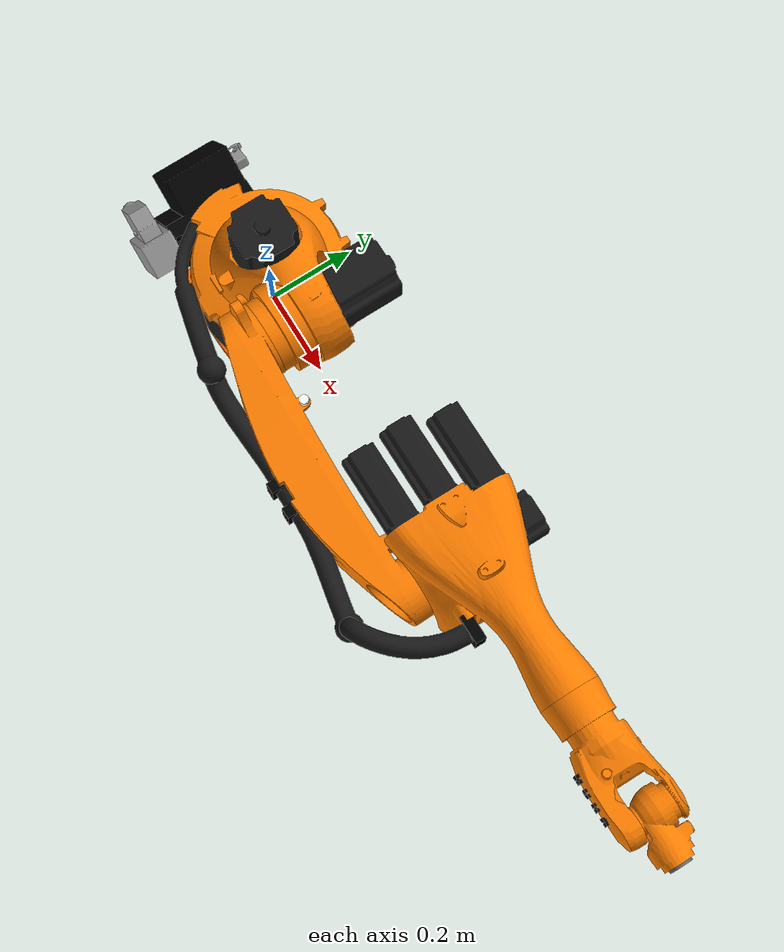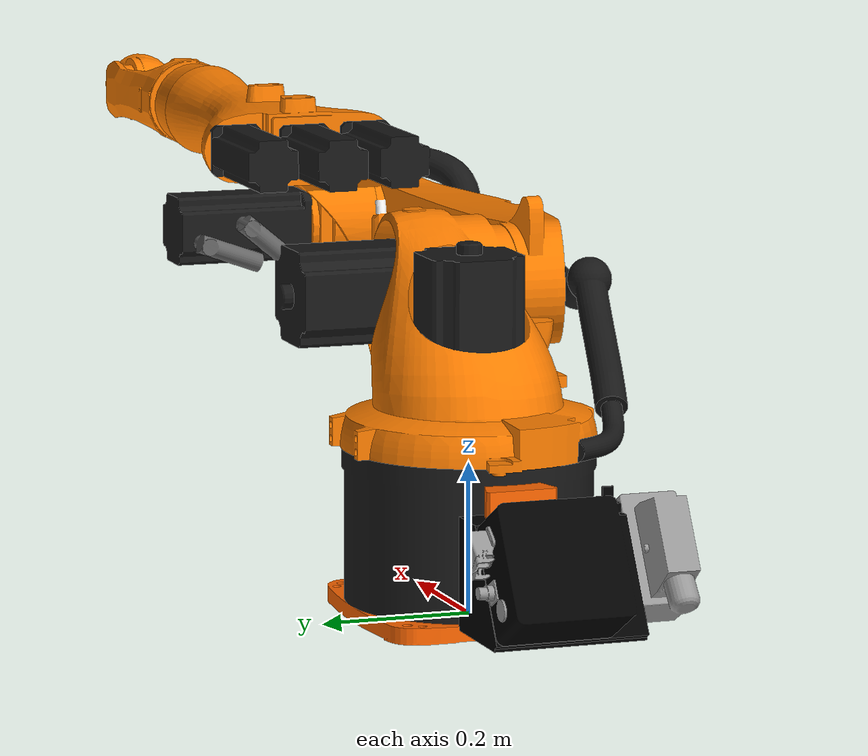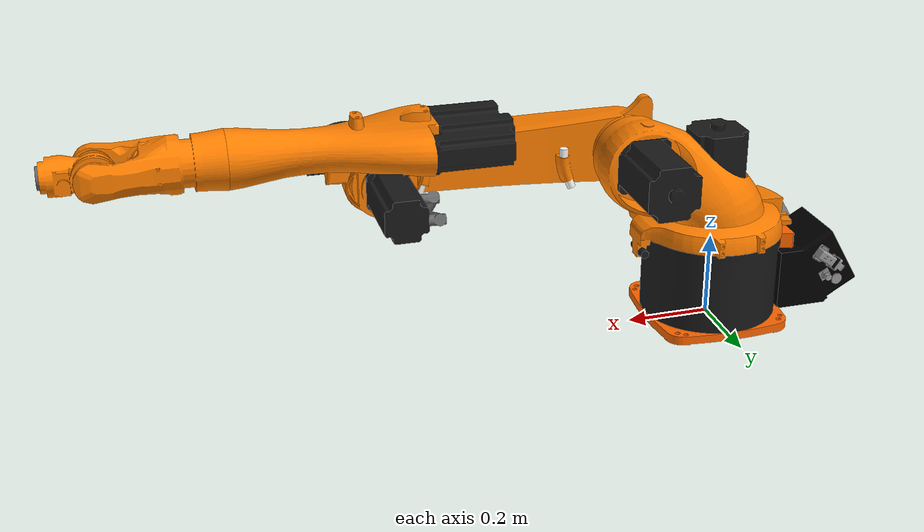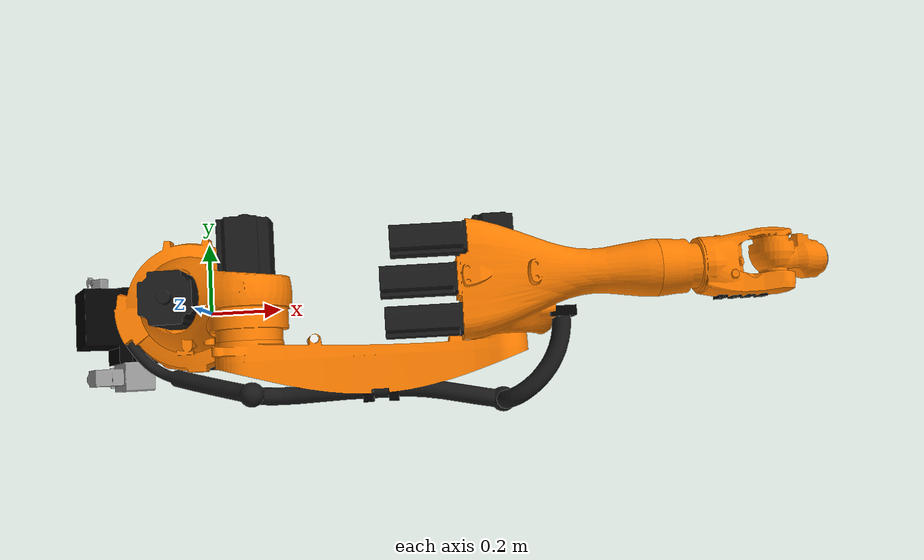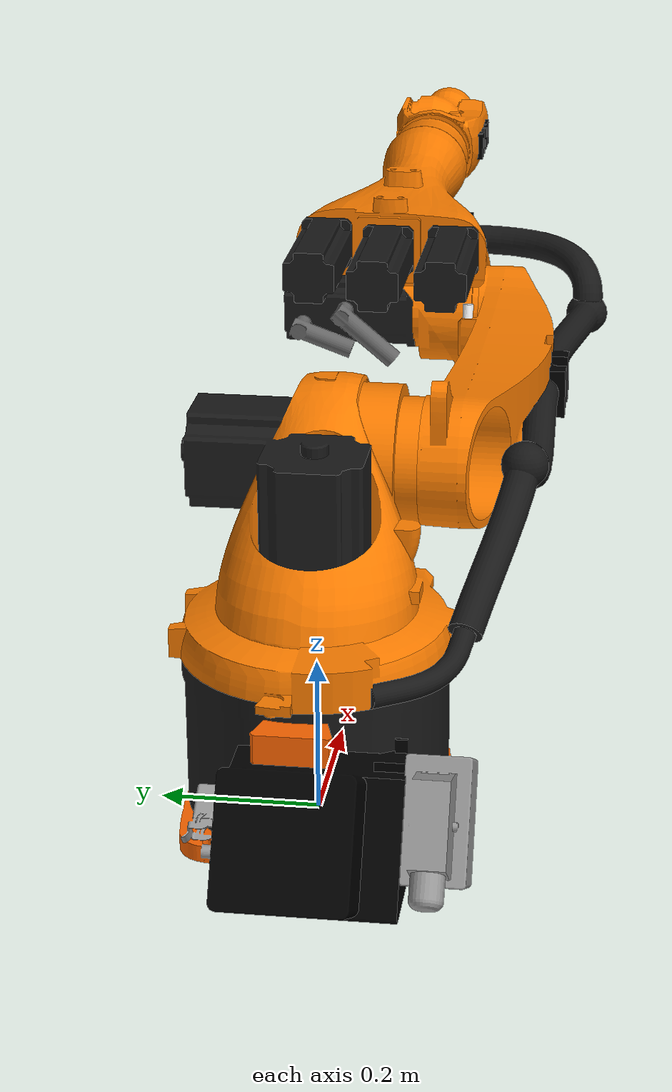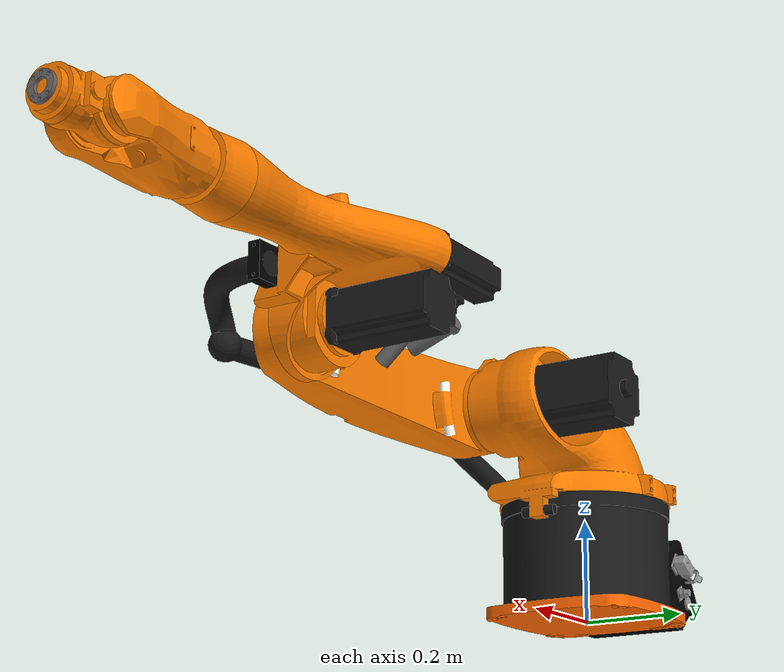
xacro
<?xml version="1.0"?>
<robot name="kuka_kr5_arc" xmlns:xacro="http://wiki.ros.org/xacro">
  <xacro:arg name="prefix" default="" />
  <xacro:arg name="use_mock_hardware" default="false" />

  <xacro:include filename="$(find kuka_kr5_support)/urdf/kr5_arc_macro.xacro" />

  <xacro:kuka_kr5_arc prefix=""/>
</robot>

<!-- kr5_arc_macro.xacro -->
<robot xmlns:xacro="http://wiki.ros.org/xacro">

  <xacro:macro name="kuka_kr5_arc" params="prefix">
    <!-- LINKS -->
    <!-- base link -->
    <link name="${prefix}base_link">
      <inertial>
        <origin xyz="-0.017519394031846 8.11394768450848E-07 0.0975924044854325"
                rpy="0 0 0" />
        <mass value="7.58585707666653" />
        <inertia
            ixx="0.0441803207364147"
            ixy="5.37433593375545E-07"
            ixz="0.004045564920652"
            iyy="0.0584309411563095"
            iyz="-4.8990117845347E-07"
            izz="0.0514875586171667" />
      </inertial>
      <visual>
        <origin rpy="0 0 0" xyz="0 0 0"/>
        <geometry>
          <mesh filename="package://kuka_kr5_support/meshes/kr5_arc/visual/base_link.dae" />
        </geometry>
      </visual>
      <collision>
        <origin rpy="0 0 0" xyz="0 0 0"/>
        <geometry>
          <mesh filename="package://kuka_kr5_support/meshes/kr5_arc/collision/base_link.stl" />
        </geometry>
      </collision>
    </link>
    <!-- link 1 (A1) -->
    <link name="${prefix}link_1">
      <inertial>
        <origin
          xyz="0.0359968408135882 0.00783796591813503 -0.0864969937502713"
          rpy="0 0 0" />
        <mass
          value="5.77242340173648" />
        <inertia
          ixx="0.0327019582662897"
          ixy="-0.00189987845379704"
          ixz="0.00937014136132958"
          iyy="0.0373787564144547"
          iyz="-0.00197023031658988"
          izz="0.0348614383349291" />
      </inertial>
      <visual>
        <origin xyz="0 0 0" rpy="0 0 0"/>
        <geometry>
          <mesh filename="package://kuka_kr5_support/meshes/kr5_arc/visual/link_1.dae" />
        </geometry>
      </visual>
      <collision>
        <origin xyz="0 0 0" rpy="0 0 0"/>
        <geometry>
          <mesh filename="package://kuka_kr5_support/meshes/kr5_arc/collision/link_1.stl" />
        </geometry>
      </collision>
    </link>
    <!-- link 2 -->
    <link name="${prefix}link_2">
      <inertial>
        <origin
          xyz="0.00610231661046294 0.0401115026555897 -0.11531122862673"
          rpy="0 0 0" />
        <mass
          value="4.64974639735464" />
        <inertia
          ixx="0.0663459530931455"
          ixy="0.000173652478770081"
          ixz="0.000586191290902105"
          iyy="0.070407913174161"
          iyz="-0.00203071071007864"
          izz="0.0102816377550493" />
      </inertial>
      <visual>
        <origin xyz="0 0 0" rpy="0 0 0"/>
        <geometry>
          <mesh filename="package://kuka_kr5_support/meshes/kr5_arc/visual/link_2.dae"/>
        </geometry>
      </visual>
      <collision>
        <origin xyz="0 0 0" rpy="0 0 0"/>
        <geometry>
          <mesh filename="package://kuka_kr5_support/meshes/kr5_arc/collision/link_2.stl"  />
        </geometry>
      </collision>
    </link>
    <!-- link 3 -->
    <link name="${prefix}link_3">
      <inertial>
        <origin
          xyz="0.0755031858462784 -0.046481517407519 -0.00506472105904233"
          rpy="0 0 0" />
        <mass
          value="4.3593398708568" />
        <inertia
          ixx="0.0202008069207718"
          ixy="5.72394748332304E-05"
          ixz="0.000556621203065716"
          iyy="0.0246796752429931"
          iyz="0.000697020296811431"
          izz="0.0178067561136726" />
      </inertial>
      <visual>
        <origin xyz="0 0 0" rpy="0 0 0"/>
        <geometry>
          <mesh filename="package://kuka_kr5_support/meshes/kr5_arc/visual/link_3.dae" />
        </geometry>
      </visual>
      <collision>
        <origin xyz="0 0 0" rpy="0 0 0"/>
        <geometry>
          <mesh filename="package://kuka_kr5_support/meshes/kr5_arc/collision/link_3.stl"  />
        </geometry>
      </collision>
    </link>
    <!-- link 4 -->
    <link name="${prefix}link_4">
      <inertial>
        <origin
          xyz="0.0857493724873204 -0.00149370513017266 -0.00271609825446984"
          rpy="0 0 0" />
        <mass
          value="2.06809715541017" />
        <inertia
          ixx="0.00444943757623485"
          ixy="-0.000424915429214687"
          ixz="-0.000117340671961173"
          iyy="0.00882693069799353"
          iyz="0.000136971152627904"
          izz="0.0101131228921778" />
      </inertial>
      <visual>
        <origin xyz="0 0 0" rpy="0 0 0"/>
        <geometry>
          <mesh filename="package://kuka_kr5_support/meshes/kr5_arc/visual/link_4.dae" />
        </geometry>
      </visual>
      <collision>
        <origin xyz="0 0 0" rpy="0 0 0"/>
        <geometry>
          <mesh filename="package://kuka_kr5_support/meshes/kr5_arc/collision/link_4.stl"  />
        </geometry>
      </collision>
    </link>
    <!-- link 5 -->
    <link name="${prefix}link_5">
      <inertial>
        <origin
          xyz="0 0 0"
          rpy="0 0 0" />
        <mass
          value="0.328309098974388" />
        <inertia
          ixx="0.000221789219477276"
          ixy="-9.59628913869705E-07"
          ixz="1.40395663663479E-20"
          iyy="0.000321152451627032"
          iyz="-4.44973606670705E-20"
          izz="0.000275966419870925" />
      </inertial>
      <visual>
        <origin xyz="0 0 0" rpy="0 0 0"/>
        <geometry>
          <mesh filename="package://kuka_kr5_support/meshes/kr5_arc/visual/link_5.dae" />
        </geometry>
      </visual>
      <collision>
        <origin xyz="0 0 0" rpy="0 0 0"/>
        <geometry>
          <mesh filename="package://kuka_kr5_support/meshes/kr5_arc/collision/link_5.stl" />
        </geometry>
      </collision>
    </link>
    <!-- link 6 -->
    <link name="${prefix}link_6">
      <inertial>
        <origin
          xyz="0.00983949894991115 -2.78372724487979E-05 -1.11022302462516E-15"
          rpy="0 0 0" />
        <mass
          value="0.0789494717998531" />
        <inertia
          ixx="3.53285039019399E-05"
          ixy="-3.23299732456798E-08"
          ixz="-6.9643163510009E-19"
          iyy="2.30177957763861E-05"
          iyz="-9.26550270485857E-19"
          izz="2.28539400944714E-05" />
      </inertial>
      <visual>
        <origin xyz="0 0 0" rpy="0 0 0"/>
        <geometry>
          <mesh filename="package://kuka_kr5_support/meshes/kr5_arc/visual/link_6.dae" />
        </geometry>
      </visual>
      <collision>
        <origin xyz="0 0 0" rpy="0 0 0"/>
        <geometry>
          <mesh filename="package://kuka_kr5_support/meshes/kr5_arc/collision/link_6.stl" />
        </geometry>
      </collision>
    </link>
    <!-- tool link -->
    <!-- Following REP199, this frame shall be use to attach EEF or other equipment -->
    <link name="${prefix}flange" />

    <!-- END LINKS -->

    <!-- JOINTS -->
    <!-- joint 1 (A1) -->
    <joint name="${prefix}joint_a1" type="revolute">
      <origin xyz="0 0 0.4" rpy="${radians(180)} 0 0"/>
      <parent link="${prefix}base_link"/>
      <child link="${prefix}link_1"/>
      <axis xyz="0 0 1"/>
      <limit effort="0" lower="${radians(-155)}" upper="${radians(155)}" velocity="${radians(154)}"/>
    </joint>
    <!-- joint 2 (A2) -->
    <joint name="${prefix}joint_a2" type="revolute">
      <origin xyz="0.18 0 0" rpy="${radians(90)} 0 0"/>
      <parent link="${prefix}link_1"/>
      <child link="${prefix}link_2"/>
      <axis xyz="0 0 1"/>
      <limit effort="0" lower="${radians(-180)}" upper="${radians(65)}" velocity="${radians(154)}"/>
    </joint>
    <!-- joint 3 (A3) -->
    <joint name="${prefix}joint_a3" type="revolute">
      <origin xyz="0.6 0 0" rpy="0 0 0"/>
      <parent link="${prefix}link_2"/>
      <child link="${prefix}link_3"/>
      <axis xyz="0 0 1"/>
      <limit effort="0" lower="${radians(-15)}" upper="${radians(158)}" velocity="${radians(228)}"/>
    </joint>
    <!-- joint 4 (A4) -->
    <joint name="${prefix}joint_a4" type="revolute">
      <origin xyz="0 -0.12 0" rpy="0 ${-radians(90)} 0"/>
      <parent link="${prefix}link_3"/>
      <child link="${prefix}link_4"/>
      <axis xyz="0 0 1"/>
      <limit effort="0" lower="${radians(-350)}" upper="${radians(350)}" velocity="${radians(343)}"/>
    </joint>
    <!-- joint 5 (A5) -->
    <joint name="${prefix}joint_a5" type="revolute">
      <origin xyz="0 0 -0.62" rpy="0 ${radians(90)} 0"/>
      <parent link="${prefix}link_4"/>
      <child link="${prefix}link_5"/>
      <axis xyz="0 0 1"/>
      <limit effort="0" lower="${radians(-130)}" upper="${radians(130)}" velocity="${radians(384)}"/>
    </joint>
    <!-- joint 6 (A6) -->
    <joint name="${prefix}joint_a6" type="revolute">
      <origin xyz="0 0 0" rpy="0 ${-radians(90)} 0"/>
      <parent link="${prefix}link_5"/>
      <child link="${prefix}link_6"/>
      <axis xyz="0 0 1"/>
      <limit effort="0" lower="${radians(-350)}" upper="${radians(350)}" velocity="${radians(721)}"/>
    </joint>
    <!-- tool frame - fixed frame -->
    <joint name="${prefix}joint_a6-flange" type="fixed">
      <parent link="${prefix}link_6"/>
      <child link="${prefix}flange"/>
      <origin xyz="0 0 -0.115" rpy="0 ${radians(90)} ${-radians(90)}"/>
    </joint>
    <!-- END JOINTS -->

    <!-- ROS base_link to KUKA $ROBROOT coordinate system transform -->
    <link name="${prefix}base" />
    <joint name="${prefix}base_link-base" type="fixed">
      <origin xyz="0 0 0" rpy="0 0 0"/>
      <parent link="${prefix}base_link"/>
      <child link="${prefix}base"/>
    </joint>

    <!-- This frame corresponds to the $TOOL coordinate system in KUKA KRC controllers -->
    <link name="${prefix}tool0" />
    <joint name="${prefix}flange-tool0" type="fixed">
      <parent link="${prefix}flange"/>
      <child link="${prefix}tool0"/>
      <origin xyz="0 0 0" rpy="0 ${radians(90)} 0"/>
    </joint>

  </xacro:macro>
</robot>
